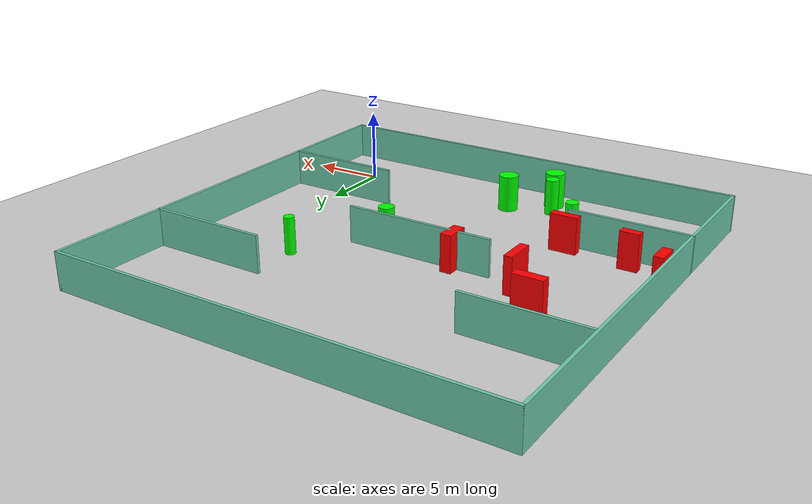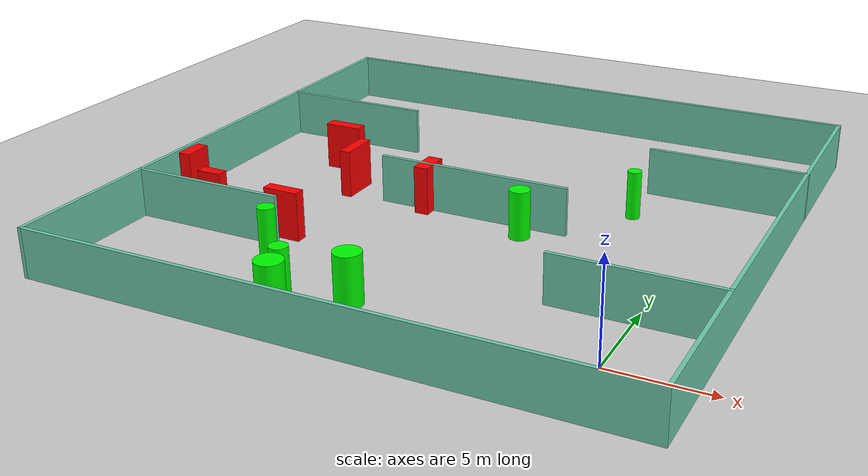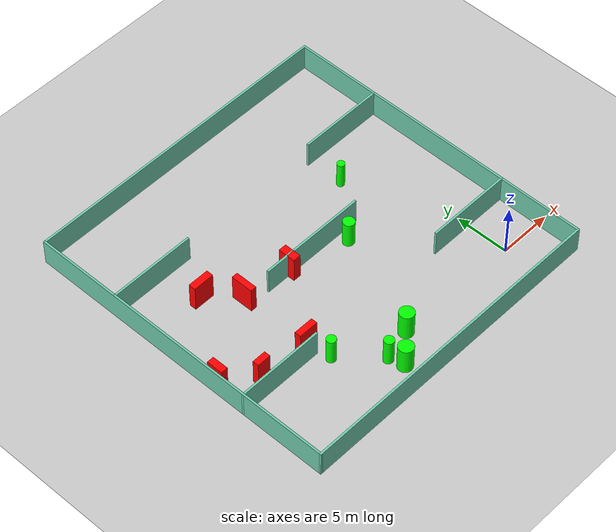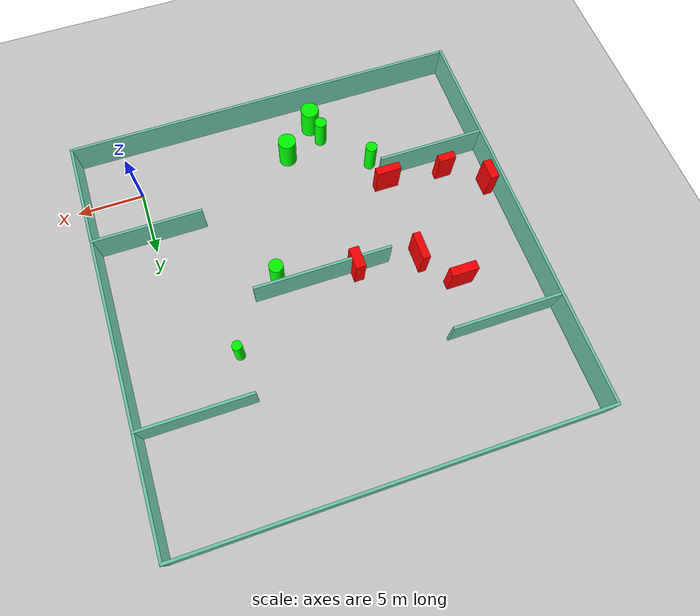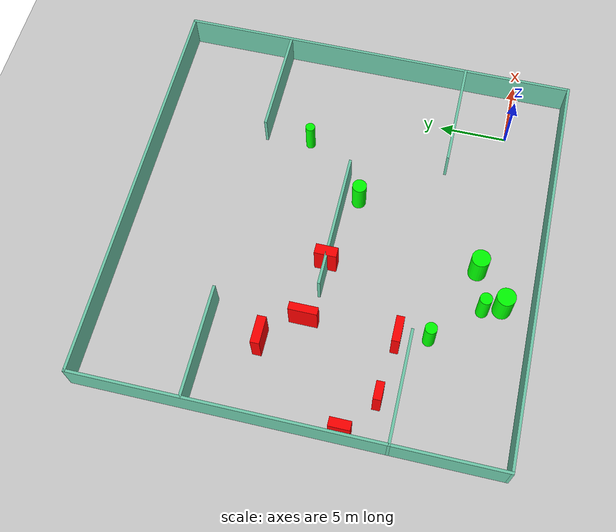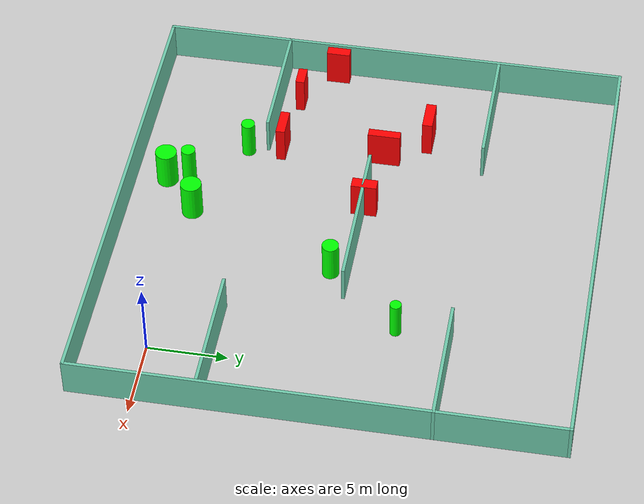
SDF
<sdf version="1.7">
 <world name="default">
  <light name="sun" type="directional">
   <pose>0 0 10 0 -0 0</pose>
   <diffuse>0.8 0.8 0.8 1</diffuse>
   <specular>0.2 0.2 0.2 1</specular>
   <attenuation>
    <range>1000</range>
    <constant>0.9</constant>
    <linear>0.01</linear>
    <quadratic>0.001</quadratic>
   </attenuation>
   <direction>-0.5 0.1 -0.9</direction>
   <spot><inner_angle>0</inner_angle><outer_angle>0</outer_angle><falloff>0</falloff></spot>
  </light>
  <model name="ground_plane">
   <static>1</static>
   <link name="link">
    <collision name="collision">
     <geometry><plane><normal>0 0 1</normal><size>100 100</size></plane></geometry>
     <surface>
      <contact><collide_bitmask>65535</collide_bitmask></contact>
      <friction><ode><mu>100</mu><mu2>50</mu2></ode></friction>
     </surface>
    </collision>
    <visual name="visual">
     <cast_shadows>0</cast_shadows>
     <geometry><plane><normal>0 0 1</normal><size>100 100</size></plane></geometry>
     <material>
      <script><uri>file://media/materials/scripts/gazebo.material</uri><name>Gazebo/Grey</name></script>
     </material>
    </visual>
   </link>
  </model>
  <gravity>0 0 -9.8</gravity>
  <magnetic_field>6e-06 2.3e-05 -4.2e-05</magnetic_field>
  <atmosphere type="adiabatic"/>
  <physics type="ode">
   <max_step_size>0.001</max_step_size>
   <real_time_factor>1</real_time_factor>
   <real_time_update_rate>1000</real_time_update_rate>
  </physics>
  <scene><ambient>0.4 0.4 0.4 1</ambient><background>0.7 0.7 0.7 1</background><shadows>1</shadows></scene>
  <spherical_coordinates>
   <surface_model>EARTH_WGS84</surface_model>
   <latitude_deg>0</latitude_deg>
   <longitude_deg>0</longitude_deg>
   <elevation>0</elevation>
   <heading_deg>0</heading_deg>
  </spherical_coordinates>
  <model name="my_base_walls">
   <link name="Wall_10">
    <collision name="Wall_10_Collision">
     <geometry><box><size>8.2 0.2 2.5</size></box></geometry>
     <pose>0 0 1.25 0 -0 0</pose>
    </collision>
    <visual name="Wall_10_Visual">
     <pose>0 0 1.25 0 -0 0</pose>
     <geometry><box><size>8.2 0.2 2.5</size></box></geometry>
     <material>
      <script><uri>file://media/materials/scripts/gazebo.material</uri><name>Gazebo/Grey</name></script>
      <ambient>0.435294 0.796078 0.67451 1</ambient>
     </material>
     <meta><layer>0</layer></meta>
    </visual>
    <pose>-11 -7 0 0 -0 0</pose>
   </link>
   <link name="Wall_12">
    <collision name="Wall_12_Collision">
     <geometry><box><size>8.2 0.2 2.5</size></box></geometry>
     <pose>0 0 1.25 0 -0 0</pose>
    </collision>
    <visual name="Wall_12_Visual">
     <pose>0 0 1.25 0 -0 0</pose>
     <geometry><box><size>8.2 0.2 2.5</size></box></geometry>
     <material>
      <script><uri>file://media/materials/scripts/gazebo.material</uri><name>Gazebo/Grey</name></script>
      <ambient>0.435294 0.796078 0.67451 1</ambient>
     </material>
     <meta><layer>0</layer></meta>
    </visual>
    <pose>-11 7 0 0 -0 0</pose>
   </link>
   <link name="Wall_14">
    <collision name="Wall_14_Collision">
     <geometry><box><size>8.2 0.2 2.5</size></box></geometry>
     <pose>0 0 1.25 0 -0 0</pose>
    </collision>
    <visual name="Wall_14_Visual">
     <pose>0 0 1.25 0 -0 0</pose>
     <geometry><box><size>8.2 0.2 2.5</size></box></geometry>
     <material>
      <script><uri>file://media/materials/scripts/gazebo.material</uri><name>Gazebo/Grey</name></script>
      <ambient>0.435294 0.796078 0.67451 1</ambient>
     </material>
     <meta><layer>0</layer></meta>
    </visual>
    <pose>11 7 0 0 -0 3.14159</pose>
   </link>
   <link name="Wall_16">
    <collision name="Wall_16_Collision">
     <geometry><box><size>10.2 0.2 2.5</size></box></geometry>
     <pose>0 0 1.25 0 -0 0</pose>
    </collision>
    <visual name="Wall_16_Visual">
     <pose>0 0 1.25 0 -0 0</pose>
     <geometry><box><size>10.2 0.2 2.5</size></box></geometry>
     <material>
      <script><uri>file://media/materials/scripts/gazebo.material</uri><name>Gazebo/Grey</name></script>
      <ambient>0.435294 0.796078 0.67451 1</ambient>
     </material>
     <meta><layer>0</layer></meta>
    </visual>
    <pose>0 0 0 0 -0 3.14159</pose>
   </link>
   <link name="Wall_2">
    <collision name="Wall_2_Collision">
     <geometry><box><size>30.2 0.2 2.5</size></box></geometry>
     <pose>0 0 1.25 0 -0 0</pose>
    </collision>
    <visual name="Wall_2_Visual">
     <pose>0 0 1.25 0 -0 0</pose>
     <geometry><box><size>30.2 0.2 2.5</size></box></geometry>
     <material>
      <script><uri>file://media/materials/scripts/gazebo.material</uri><name>Gazebo/Grey</name></script>
      <ambient>0.435294 0.796078 0.67451 1</ambient>
     </material>
     <meta><layer>0</layer></meta>
    </visual>
    <pose>0 -15 0 0 -0 3.14159</pose>
   </link>
   <link name="Wall_3">
    <collision name="Wall_3_Collision">
     <geometry><box><size>30.2 0.2 2.5</size></box></geometry>
     <pose>0 0 1.25 0 -0 0</pose>
    </collision>
    <visual name="Wall_3_Visual">
     <pose>0 0 1.25 0 -0 0</pose>
     <geometry><box><size>30.2 0.2 2.5</size></box></geometry>
     <material>
      <script><uri>file://media/materials/scripts/gazebo.material</uri><name>Gazebo/Grey</name></script>
      <ambient>0.435294 0.796078 0.67451 1</ambient>
     </material>
     <meta><layer>0</layer></meta>
    </visual>
    <pose>-15 0 0 0 -0 1.5708</pose>
   </link>
   <link name="Wall_4">
    <collision name="Wall_4_Collision">
     <geometry><box><size>30.2 0.2 2.5</size></box></geometry>
     <pose>0 0 1.25 0 -0 0</pose>
    </collision>
    <visual name="Wall_4_Visual">
     <pose>0 0 1.25 0 -0 0</pose>
     <geometry><box><size>30.2 0.2 2.5</size></box></geometry>
     <material>
      <script><uri>file://media/materials/scripts/gazebo.material</uri><name>Gazebo/Grey</name></script>
      <ambient>0.435294 0.796078 0.67451 1</ambient>
     </material>
     <meta><layer>0</layer></meta>
    </visual>
    <pose>0 15 0 0 -0 0</pose>
   </link>
   <link name="Wall_6">
    <collision name="Wall_6_Collision">
     <geometry><box><size>30.2 0.2 2.5</size></box></geometry>
     <pose>0 0 1.25 0 -0 0</pose>
    </collision>
    <visual name="Wall_6_Visual">
     <pose>0 0 1.25 0 -0 0</pose>
     <geometry><box><size>30.2 0.2 2.5</size></box></geometry>
     <material>
      <script><uri>file://media/materials/scripts/gazebo.material</uri><name>Gazebo/Grey</name></script>
      <ambient>0.435294 0.796078 0.67451 1</ambient>
     </material>
     <meta><layer>0</layer></meta>
    </visual>
    <pose>15 0 0 0 -0 1.5708</pose>
   </link>
   <link name="Wall_8">
    <collision name="Wall_8_Collision">
     <geometry><box><size>8.2 0.2 2.5</size></box></geometry>
     <pose>0 0 1.25 0 -0 0</pose>
    </collision>
    <visual name="Wall_8_Visual">
     <pose>0 0 1.25 0 -0 0</pose>
     <geometry><box><size>8.2 0.2 2.5</size></box></geometry>
     <material>
      <script><uri>file://media/materials/scripts/gazebo.material</uri><name>Gazebo/Grey</name></script>
      <ambient>0.435294 0.796078 0.67451 1</ambient>
     </material>
     <meta><layer>0</layer></meta>
    </visual>
    <pose>11 -7 0 0 -0 3.14159</pose>
   </link>
   <static>1</static>
   <pose>-11 11 0 0 -0 0</pose>
  </model>
  <model name="cylinder1">
   <static>1</static>
   <link name="link">
    <inertial>
     <mass>1</mass>
     <inertia><ixx>0.5</ixx><ixy>0</ixy><ixz>0</ixz><iyy>0.5</iyy><iyz>0</iyz><izz>1</izz></inertia>
    </inertial>
    <collision name="collision">
     <geometry><cylinder><radius>0.525958241060271</radius><length>2.5</length></cylinder></geometry>
    </collision>
    <visual name="visual">
     <geometry><cylinder><radius>0.525958241060271</radius><length>2.5</length></cylinder></geometry>
     <material>
      <ambient>0 1 0 1</ambient>
      <diffuse>0 1 0 1</diffuse>
      <specular>0.1 0.1 0.1 1</specular>
      <emissive>0 0 0 0</emissive>
     </material>
    </visual>
   </link>
   <pose>-7.899618364525917 9.876511966051494 1.25 0 0 0</pose>
  </model>
  <model name="cylinder2">
   <static>1</static>
   <link name="link">
    <inertial>
     <mass>1</mass>
     <inertia><ixx>0.5</ixx><ixy>0</ixy><ixz>0</ixz><iyy>0.5</iyy><iyz>0</iyz><izz>1</izz></inertia>
    </inertial>
    <collision name="collision">
     <geometry><cylinder><radius>0.35372842277347377</radius><length>2.5</length></cylinder></geometry>
    </collision>
    <visual name="visual">
     <geometry><cylinder><radius>0.35372842277347377</radius><length>2.5</length></cylinder></geometry>
     <material>
      <ambient>0 1 0 1</ambient>
      <diffuse>0 1 0 1</diffuse>
      <specular>0.1 0.1 0.1 1</specular>
      <emissive>0 0 0 0</emissive>
     </material>
    </visual>
   </link>
   <pose>-3.757808158894356 14.590731204788757 1.25 0 0 0</pose>
  </model>
  <model name="cylinder3">
   <static>1</static>
   <link name="link">
    <inertial>
     <mass>1</mass>
     <inertia><ixx>0.5</ixx><ixy>0</ixy><ixz>0</ixz><iyy>0.5</iyy><iyz>0</iyz><izz>1</izz></inertia>
    </inertial>
    <collision name="collision">
     <geometry><cylinder><radius>0.4517777859821193</radius><length>2.5</length></cylinder></geometry>
    </collision>
    <visual name="visual">
     <geometry><cylinder><radius>0.4517777859821193</radius><length>2.5</length></cylinder></geometry>
     <material>
      <ambient>0 1 0 1</ambient>
      <diffuse>0 1 0 1</diffuse>
      <specular>0.1 0.1 0.1 1</specular>
      <emissive>0 0 0 0</emissive>
     </material>
    </visual>
   </link>
   <pose>-14.619082426366536 -0.5221326770156081 1.25 0 0 0</pose>
  </model>
  <model name="cylinder4">
   <static>1</static>
   <link name="link">
    <inertial>
     <mass>1</mass>
     <inertia><ixx>0.5</ixx><ixy>0</ixy><ixz>0</ixz><iyy>0.5</iyy><iyz>0</iyz><izz>1</izz></inertia>
    </inertial>
    <collision name="collision">
     <geometry><cylinder><radius>0.43445602670390465</radius><length>2.5</length></cylinder></geometry>
    </collision>
    <visual name="visual">
     <geometry><cylinder><radius>0.43445602670390465</radius><length>2.5</length></cylinder></geometry>
     <material>
      <ambient>0 1 0 1</ambient>
      <diffuse>0 1 0 1</diffuse>
      <specular>0.1 0.1 0.1 1</specular>
      <emissive>0 0 0 0</emissive>
     </material>
    </visual>
   </link>
   <pose>-17.593565646673387 2.7783501278514358 1.25 0 0 0</pose>
  </model>
  <model name="cylinder5">
   <static>1</static>
   <link name="link">
    <inertial>
     <mass>1</mass>
     <inertia><ixx>0.5</ixx><ixy>0</ixy><ixz>0</ixz><iyy>0.5</iyy><iyz>0</iyz><izz>1</izz></inertia>
    </inertial>
    <collision name="collision">
     <geometry><cylinder><radius>0.6818485365656618</radius><length>2.5</length></cylinder></geometry>
    </collision>
    <visual name="visual">
     <geometry><cylinder><radius>0.6818485365656618</radius><length>2.5</length></cylinder></geometry>
     <material>
      <ambient>0 1 0 1</ambient>
      <diffuse>0 1 0 1</diffuse>
      <specular>0.1 0.1 0.1 1</specular>
      <emissive>0 0 0 0</emissive>
     </material>
    </visual>
   </link>
   <pose>-14.178277353555663 -1.8695540433637925 1.25 0 0 0</pose>
  </model>
  <model name="cylinder6">
   <static>1</static>
   <link name="link">
    <inertial>
     <mass>1</mass>
     <inertia><ixx>0.5</ixx><ixy>0</ixy><ixz>0</ixz><iyy>0.5</iyy><iyz>0</iyz><izz>1</izz></inertia>
    </inertial>
    <collision name="collision">
     <geometry><cylinder><radius>0.6706489014016683</radius><length>2.5</length></cylinder></geometry>
    </collision>
    <visual name="visual">
     <geometry><cylinder><radius>0.6706489014016683</radius><length>2.5</length></cylinder></geometry>
     <material>
      <ambient>0 1 0 1</ambient>
      <diffuse>0 1 0 1</diffuse>
      <specular>0.1 0.1 0.1 1</specular>
      <emissive>0 0 0 0</emissive>
     </material>
    </visual>
   </link>
   <pose>-11.660124198500903 0.29581362331280614 1.25 0 0 0</pose>
  </model>
  <model name="box1">
   <static>1</static>
   <link name="link">
    <inertial>
     <mass>1</mass>
     <inertia><ixx>0.083</ixx><ixy>0</ixy><ixz>0</ixz><iyy>0.083</iyy><iyz>0</iyz><izz>0.083</izz></inertia>
    </inertial>
    <collision name="collision">
     <geometry><box><size>0.5687233857939251 2.0757507199958267 2.5</size></box></geometry>
    </collision>
    <visual name="visual">
     <geometry><box><size>0.5687233857939251 2.0757507199958267 2.5</size></box></geometry>
     <material>
      <ambient>1 0 0 1</ambient>
      <diffuse>1 0 0 1</diffuse>
      <specular>0.1 0.1 0.1 1</specular>
      <emissive>0 0 0 0</emissive>
     </material>
    </visual>
    <sensor name="my_contact" type="contact">
     <contact><collision>box_collision</collision><topic>__default_topic__</topic></contact>
    </sensor>
   </link>
   <pose>-18.141609821127865 11.594692742551302 1.25 0 0 0</pose>
  </model>
  <model name="box2">
   <static>1</static>
   <link name="link">
    <inertial>
     <mass>1</mass>
     <inertia><ixx>0.083</ixx><ixy>0</ixy><ixz>0</ixz><iyy>0.083</iyy><iyz>0</iyz><izz>0.083</izz></inertia>
    </inertial>
    <collision name="collision">
     <geometry><box><size>0.7441670415678645 1.6168346238036557 2.5</size></box></geometry>
    </collision>
    <visual name="visual">
     <geometry><box><size>0.7441670415678645 1.6168346238036557 2.5</size></box></geometry>
     <material>
      <ambient>1 0 0 1</ambient>
      <diffuse>1 0 0 1</diffuse>
      <specular>0.1 0.1 0.1 1</specular>
      <emissive>0 0 0 0</emissive>
     </material>
    </visual>
    <sensor name="my_contact" type="contact">
     <contact><collision>box_collision</collision><topic>__default_topic__</topic></contact>
    </sensor>
   </link>
   <pose>-13.517335759029992 11.061472912893588 1.25 0 0 0</pose>
  </model>
  <model name="box3">
   <static>1</static>
   <link name="link">
    <inertial>
     <mass>1</mass>
     <inertia><ixx>0.083</ixx><ixy>0</ixy><ixz>0</ixz><iyy>0.083</iyy><iyz>0</iyz><izz>0.083</izz></inertia>
    </inertial>
    <collision name="collision">
     <geometry><box><size>0.6488012309709423 1.5176360658873542 2.5</size></box></geometry>
    </collision>
    <visual name="visual">
     <geometry><box><size>0.6488012309709423 1.5176360658873542 2.5</size></box></geometry>
     <material>
      <ambient>1 0 0 1</ambient>
      <diffuse>1 0 0 1</diffuse>
      <specular>0.1 0.1 0.1 1</specular>
      <emissive>0 0 0 0</emissive>
     </material>
    </visual>
    <sensor name="my_contact" type="contact">
     <contact><collision>box_collision</collision><topic>__default_topic__</topic></contact>
    </sensor>
   </link>
   <pose>-25.376181116689366 7.370878723528815 1.25 0 0 0</pose>
  </model>
  <model name="box4">
   <static>1</static>
   <link name="link">
    <inertial>
     <mass>1</mass>
     <inertia><ixx>0.083</ixx><ixy>0</ixy><ixz>0</ixz><iyy>0.083</iyy><iyz>0</iyz><izz>0.083</izz></inertia>
    </inertial>
    <collision name="collision">
     <geometry><box><size>1.300754898046578 0.5814496818533819 2.5</size></box></geometry>
    </collision>
    <visual name="visual">
     <geometry><box><size>1.300754898046578 0.5814496818533819 2.5</size></box></geometry>
     <material>
      <ambient>1 0 0 1</ambient>
      <diffuse>1 0 0 1</diffuse>
      <specular>0.1 0.1 0.1 1</specular>
      <emissive>0 0 0 0</emissive>
     </material>
    </visual>
    <sensor name="my_contact" type="contact">
     <contact><collision>box_collision</collision><topic>__default_topic__</topic></contact>
    </sensor>
   </link>
   <pose>-22.642396109539053 5.350362699982476 1.25 0 0 0</pose>
  </model>
  <model name="box5">
   <static>1</static>
   <link name="link">
    <inertial>
     <mass>1</mass>
     <inertia><ixx>0.083</ixx><ixy>0</ixy><ixz>0</ixz><iyy>0.083</iyy><iyz>0</iyz><izz>0.083</izz></inertia>
    </inertial>
    <collision name="collision">
     <geometry><box><size>1.8627938369876316 0.5855096148382035 2.5</size></box></geometry>
    </collision>
    <visual name="visual">
     <geometry><box><size>1.8627938369876316 0.5855096148382035 2.5</size></box></geometry>
     <material>
      <ambient>1 0 0 1</ambient>
      <diffuse>1 0 0 1</diffuse>
      <specular>0.1 0.1 0.1 1</specular>
      <emissive>0 0 0 0</emissive>
     </material>
    </visual>
    <sensor name="my_contact" type="contact">
     <contact><collision>box_collision</collision><topic>__default_topic__</topic></contact>
    </sensor>
   </link>
   <pose>-18.122321759989024 4.952547153198091 1.25 0 0 0</pose>
  </model>
  <model name="box6">
   <static>1</static>
   <link name="link">
    <inertial>
     <mass>1</mass>
     <inertia><ixx>0.083</ixx><ixy>0</ixy><ixz>0</ixz><iyy>0.083</iyy><iyz>0</iyz><izz>0.083</izz></inertia>
    </inertial>
    <collision name="collision">
     <geometry><box><size>1.9930465817450065 0.6554535889620622 2.5</size></box></geometry>
    </collision>
    <visual name="visual">
     <geometry><box><size>1.9930465817450065 0.6554535889620622 2.5</size></box></geometry>
     <material>
      <ambient>1 0 0 1</ambient>
      <diffuse>1 0 0 1</diffuse>
      <specular>0.1 0.1 0.1 1</specular>
      <emissive>0 0 0 0</emissive>
     </material>
    </visual>
    <sensor name="my_contact" type="contact">
     <contact><collision>box_collision</collision><topic>__default_topic__</topic></contact>
    </sensor>
   </link>
   <pose>-20.317487307688157 14.190572453136046 1.25 0 0 0</pose>
  </model>
 </world>
</sdf>
